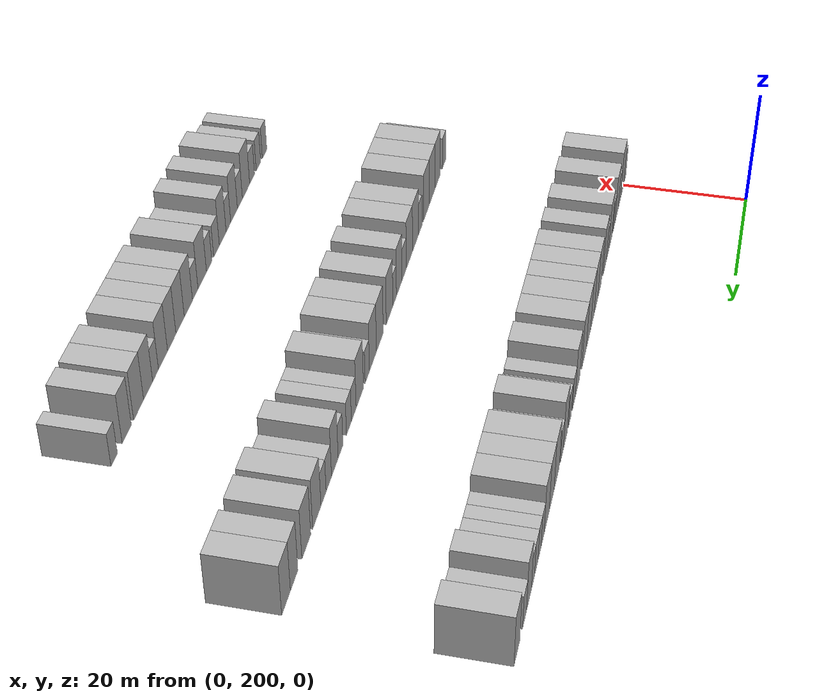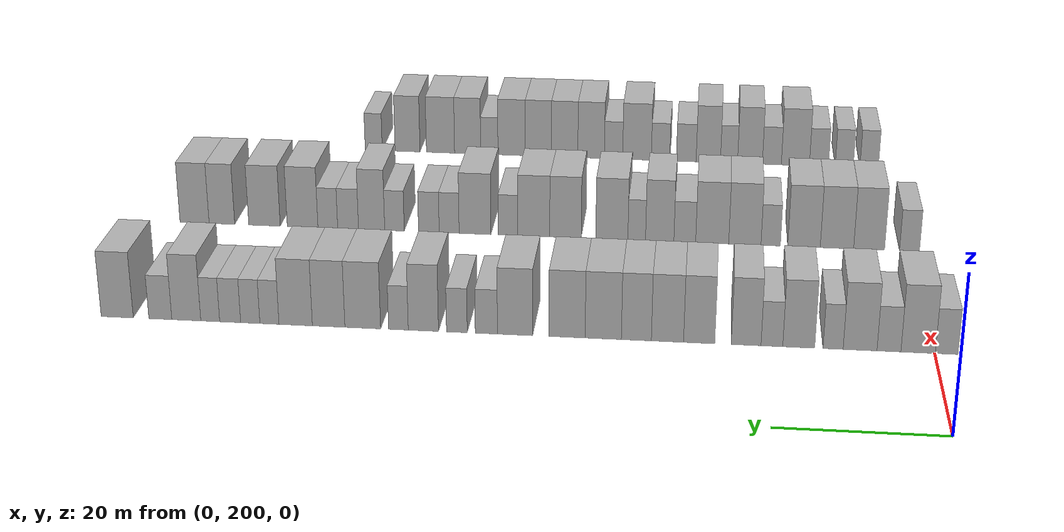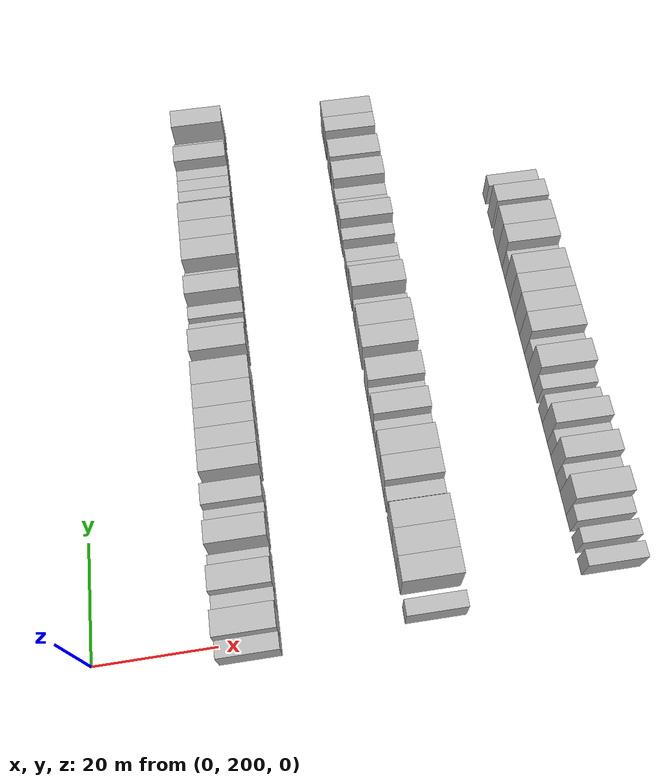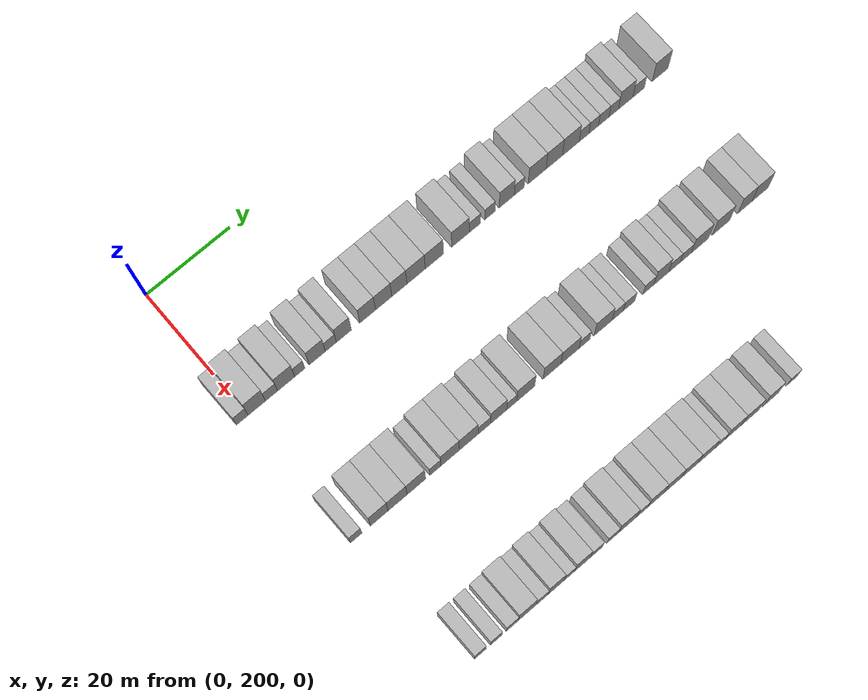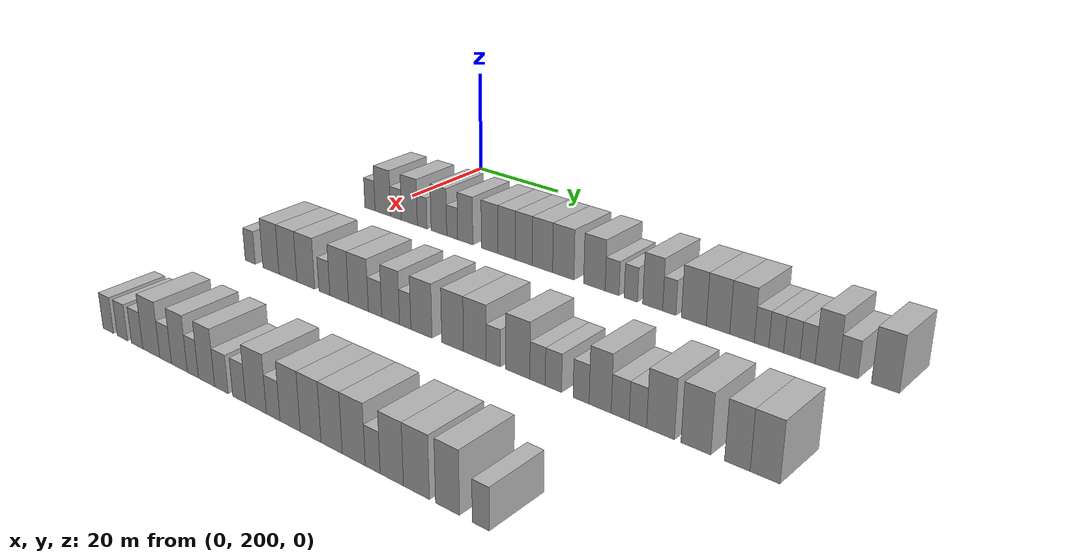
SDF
<sdf version="1.6">
 <world name="default">
  <model name="building_163">
   <static>1</static>
   <pose>25.0000 198.5859 0 0.000000 0.000000 0.000000</pose>
   <link name="link">
    <pose>0 0 3.00 0 0 0</pose>
    <collision name="collision"><geometry><box><size>10.0000 2.7339 6.0000</size></box></geometry></collision>
    <visual name="visual">
     <cast_shadows>0</cast_shadows>
     <geometry><box><size>10.0000 2.7339 6.0000</size></box></geometry>
     <material>
      <script>
       <uri>model://HANNAS_wall/materials/scripts</uri>
       <uri>model://HANNAS_wall/materials/textures</uri>
       <name>vrc/HANNAS_wall</name>
      </script>
     </material>
    </visual>
   </link>
  </model>
  <model name="building_164">
   <static>1</static>
   <pose>25.0000 202.0020 0 0.000000 0.000000 0.000000</pose>
   <link name="link">
    <pose>0 0 4.50 0 0 0</pose>
    <collision name="collision"><geometry><box><size>10.0000 4.0982 9.0000</size></box></geometry></collision>
    <visual name="visual">
     <cast_shadows>0</cast_shadows>
     <geometry><box><size>10.0000 4.0982 9.0000</size></box></geometry>
     <material>
      <script>
       <uri>model://HANNAS_wall/materials/scripts</uri>
       <uri>model://HANNAS_wall/materials/textures</uri>
       <name>vrc/HANNAS_wall</name>
      </script>
     </material>
    </visual>
   </link>
  </model>
  <model name="building_165">
   <static>1</static>
   <pose>25.0000 205.4806 0 0.000000 0.000000 0.000000</pose>
   <link name="link">
    <pose>0 0 3.00 0 0 0</pose>
    <collision name="collision"><geometry><box><size>10.0000 2.8589 6.0000</size></box></geometry></collision>
    <visual name="visual">
     <cast_shadows>0</cast_shadows>
     <geometry><box><size>10.0000 2.8589 6.0000</size></box></geometry>
     <material>
      <script>
       <uri>model://HANNAS_wall/materials/scripts</uri>
       <uri>model://HANNAS_wall/materials/textures</uri>
       <name>vrc/HANNAS_wall</name>
      </script>
     </material>
    </visual>
   </link>
  </model>
  <model name="building_166">
   <static>1</static>
   <pose>25.0000 208.9378 0 0.000000 0.000000 0.000000</pose>
   <link name="link">
    <pose>0 0 4.50 0 0 0</pose>
    <collision name="collision"><geometry><box><size>10.0000 4.0555 9.0000</size></box></geometry></collision>
    <visual name="visual">
     <cast_shadows>0</cast_shadows>
     <geometry><box><size>10.0000 4.0555 9.0000</size></box></geometry>
     <material>
      <script>
       <uri>model://HANNAS_wall/materials/scripts</uri>
       <uri>model://HANNAS_wall/materials/textures</uri>
       <name>vrc/HANNAS_wall</name>
      </script>
     </material>
    </visual>
   </link>
  </model>
  <model name="building_167">
   <static>1</static>
   <pose>25.0000 212.1729 0 0.000000 0.000000 0.000000</pose>
   <link name="link">
    <pose>0 0 3.00 0 0 0</pose>
    <collision name="collision"><geometry><box><size>10.0000 2.4148 6.0000</size></box></geometry></collision>
    <visual name="visual">
     <cast_shadows>0</cast_shadows>
     <geometry><box><size>10.0000 2.4148 6.0000</size></box></geometry>
     <material>
      <script>
       <uri>model://HANNAS_wall/materials/scripts</uri>
       <uri>model://HANNAS_wall/materials/textures</uri>
       <name>vrc/HANNAS_wall</name>
      </script>
     </material>
    </visual>
   </link>
  </model>
  <model name="building_168">
   <static>1</static>
   <pose>25.0000 216.3056 0 0.000000 0.000000 0.000000</pose>
   <link name="link">
    <pose>0 0 4.50 0 0 0</pose>
    <collision name="collision"><geometry><box><size>10.0000 3.8506 9.0000</size></box></geometry></collision>
    <visual name="visual">
     <cast_shadows>0</cast_shadows>
     <geometry><box><size>10.0000 3.8506 9.0000</size></box></geometry>
     <material>
      <script>
       <uri>model://HANNAS_wall/materials/scripts</uri>
       <uri>model://HANNAS_wall/materials/textures</uri>
       <name>vrc/HANNAS_wall</name>
      </script>
     </material>
    </visual>
   </link>
  </model>
  <model name="building_169">
   <static>1</static>
   <pose>25.0000 219.5453 0 0.000000 0.000000 0.000000</pose>
   <link name="link">
    <pose>0 0 3.00 0 0 0</pose>
    <collision name="collision"><geometry><box><size>10.0000 2.6289 6.0000</size></box></geometry></collision>
    <visual name="visual">
     <cast_shadows>0</cast_shadows>
     <geometry><box><size>10.0000 2.6289 6.0000</size></box></geometry>
     <material>
      <script>
       <uri>model://HANNAS_wall/materials/scripts</uri>
       <uri>model://HANNAS_wall/materials/textures</uri>
       <name>vrc/HANNAS_wall</name>
      </script>
     </material>
    </visual>
   </link>
  </model>
  <model name="building_170">
   <static>1</static>
   <pose>25.0000 222.6621 0 0.000000 0.000000 0.000000</pose>
   <link name="link">
    <pose>0 0 4.50 0 0 0</pose>
    <collision name="collision"><geometry><box><size>10.0000 3.6047 9.0000</size></box></geometry></collision>
    <visual name="visual">
     <cast_shadows>0</cast_shadows>
     <geometry><box><size>10.0000 3.6047 9.0000</size></box></geometry>
     <material>
      <script>
       <uri>model://HANNAS_wall/materials/scripts</uri>
       <uri>model://HANNAS_wall/materials/textures</uri>
       <name>vrc/HANNAS_wall</name>
      </script>
     </material>
    </visual>
   </link>
  </model>
  <model name="building_171">
   <static>1</static>
   <pose>25.0000 228.3617 0 0.000000 0.000000 0.000000</pose>
   <link name="link">
    <pose>0 0 4.50 0 0 0</pose>
    <collision name="collision"><geometry><box><size>10.0000 3.7944 9.0000</size></box></geometry></collision>
    <visual name="visual">
     <cast_shadows>0</cast_shadows>
     <geometry><box><size>10.0000 3.7944 9.0000</size></box></geometry>
     <material>
      <script>
       <uri>model://HANNAS_wall/materials/scripts</uri>
       <uri>model://HANNAS_wall/materials/textures</uri>
       <name>vrc/HANNAS_wall</name>
      </script>
     </material>
    </visual>
   </link>
  </model>
  <model name="building_172">
   <static>1</static>
   <pose>25.0000 232.2237 0 0.000000 0.000000 0.000000</pose>
   <link name="link">
    <pose>0 0 4.50 0 0 0</pose>
    <collision name="collision"><geometry><box><size>10.0000 3.9296 9.0000</size></box></geometry></collision>
    <visual name="visual">
     <cast_shadows>0</cast_shadows>
     <geometry><box><size>10.0000 3.9296 9.0000</size></box></geometry>
     <material>
      <script>
       <uri>model://HANNAS_wall/materials/scripts</uri>
       <uri>model://HANNAS_wall/materials/textures</uri>
       <name>vrc/HANNAS_wall</name>
      </script>
     </material>
    </visual>
   </link>
  </model>
  <model name="building_173">
   <static>1</static>
   <pose>25.0000 236.0259 0 0.000000 0.000000 0.000000</pose>
   <link name="link">
    <pose>0 0 4.50 0 0 0</pose>
    <collision name="collision"><geometry><box><size>10.0000 3.6748 9.0000</size></box></geometry></collision>
    <visual name="visual">
     <cast_shadows>0</cast_shadows>
     <geometry><box><size>10.0000 3.6748 9.0000</size></box></geometry>
     <material>
      <script>
       <uri>model://HANNAS_wall/materials/scripts</uri>
       <uri>model://HANNAS_wall/materials/textures</uri>
       <name>vrc/HANNAS_wall</name>
      </script>
     </material>
    </visual>
   </link>
  </model>
  <model name="building_174">
   <static>1</static>
   <pose>25.0000 240.0849 0 0.000000 0.000000 0.000000</pose>
   <link name="link">
    <pose>0 0 4.50 0 0 0</pose>
    <collision name="collision"><geometry><box><size>10.0000 4.4433 9.0000</size></box></geometry></collision>
    <visual name="visual">
     <cast_shadows>0</cast_shadows>
     <geometry><box><size>10.0000 4.4433 9.0000</size></box></geometry>
     <material>
      <script>
       <uri>model://HANNAS_wall/materials/scripts</uri>
       <uri>model://HANNAS_wall/materials/textures</uri>
       <name>vrc/HANNAS_wall</name>
      </script>
     </material>
    </visual>
   </link>
  </model>
  <model name="building_175">
   <static>1</static>
   <pose>25.0000 244.5379 0 0.000000 0.000000 0.000000</pose>
   <link name="link">
    <pose>0 0 4.50 0 0 0</pose>
    <collision name="collision"><geometry><box><size>10.0000 4.4626 9.0000</size></box></geometry></collision>
    <visual name="visual">
     <cast_shadows>0</cast_shadows>
     <geometry><box><size>10.0000 4.4626 9.0000</size></box></geometry>
     <material>
      <script>
       <uri>model://HANNAS_wall/materials/scripts</uri>
       <uri>model://HANNAS_wall/materials/textures</uri>
       <name>vrc/HANNAS_wall</name>
      </script>
     </material>
    </visual>
   </link>
  </model>
  <model name="building_176">
   <static>1</static>
   <pose>25.0000 250.9520 0 0.000000 0.000000 0.000000</pose>
   <link name="link">
    <pose>0 0 4.50 0 0 0</pose>
    <collision name="collision"><geometry><box><size>10.0000 4.3655 9.0000</size></box></geometry></collision>
    <visual name="visual">
     <cast_shadows>0</cast_shadows>
     <geometry><box><size>10.0000 4.3655 9.0000</size></box></geometry>
     <material>
      <script>
       <uri>model://HANNAS_wall/materials/scripts</uri>
       <uri>model://HANNAS_wall/materials/textures</uri>
       <name>vrc/HANNAS_wall</name>
      </script>
     </material>
    </visual>
   </link>
  </model>
  <model name="building_177">
   <static>1</static>
   <pose>25.0000 254.5074 0 0.000000 0.000000 0.000000</pose>
   <link name="link">
    <pose>0 0 3.00 0 0 0</pose>
    <collision name="collision"><geometry><box><size>10.0000 2.7453 6.0000</size></box></geometry></collision>
    <visual name="visual">
     <cast_shadows>0</cast_shadows>
     <geometry><box><size>10.0000 2.7453 6.0000</size></box></geometry>
     <material>
      <script>
       <uri>model://HANNAS_wall/materials/scripts</uri>
       <uri>model://HANNAS_wall/materials/textures</uri>
       <name>vrc/HANNAS_wall</name>
      </script>
     </material>
    </visual>
   </link>
  </model>
  <model name="building_178">
   <static>1</static>
   <pose>25.0000 258.1703 0 0.000000 0.000000 0.000000</pose>
   <link name="link">
    <pose>0 0 3.00 0 0 0</pose>
    <collision name="collision"><geometry><box><size>10.0000 2.5804 6.0000</size></box></geometry></collision>
    <visual name="visual">
     <cast_shadows>0</cast_shadows>
     <geometry><box><size>10.0000 2.5804 6.0000</size></box></geometry>
     <material>
      <script>
       <uri>model://HANNAS_wall/materials/scripts</uri>
       <uri>model://HANNAS_wall/materials/textures</uri>
       <name>vrc/HANNAS_wall</name>
      </script>
     </material>
    </visual>
   </link>
  </model>
  <model name="building_179">
   <static>1</static>
   <pose>25.0000 262.3469 0 0.000000 0.000000 0.000000</pose>
   <link name="link">
    <pose>0 0 4.50 0 0 0</pose>
    <collision name="collision"><geometry><box><size>10.0000 3.7728 9.0000</size></box></geometry></collision>
    <visual name="visual">
     <cast_shadows>0</cast_shadows>
     <geometry><box><size>10.0000 3.7728 9.0000</size></box></geometry>
     <material>
      <script>
       <uri>model://HANNAS_wall/materials/scripts</uri>
       <uri>model://HANNAS_wall/materials/textures</uri>
       <name>vrc/HANNAS_wall</name>
      </script>
     </material>
    </visual>
   </link>
  </model>
  <model name="building_180">
   <static>1</static>
   <pose>25.0000 265.4621 0 0.000000 0.000000 0.000000</pose>
   <link name="link">
    <pose>0 0 3.00 0 0 0</pose>
    <collision name="collision"><geometry><box><size>10.0000 2.4575 6.0000</size></box></geometry></collision>
    <visual name="visual">
     <cast_shadows>0</cast_shadows>
     <geometry><box><size>10.0000 2.4575 6.0000</size></box></geometry>
     <material>
      <script>
       <uri>model://HANNAS_wall/materials/scripts</uri>
       <uri>model://HANNAS_wall/materials/textures</uri>
       <name>vrc/HANNAS_wall</name>
      </script>
     </material>
    </visual>
   </link>
  </model>
  <model name="building_181">
   <static>1</static>
   <pose>25.0000 269.9332 0 0.000000 0.000000 0.000000</pose>
   <link name="link">
    <pose>0 0 4.50 0 0 0</pose>
    <collision name="collision"><geometry><box><size>10.0000 4.4846 9.0000</size></box></geometry></collision>
    <visual name="visual">
     <cast_shadows>0</cast_shadows>
     <geometry><box><size>10.0000 4.4846 9.0000</size></box></geometry>
     <material>
      <script>
       <uri>model://HANNAS_wall/materials/scripts</uri>
       <uri>model://HANNAS_wall/materials/textures</uri>
       <name>vrc/HANNAS_wall</name>
      </script>
     </material>
    </visual>
   </link>
  </model>
  <model name="building_182">
   <static>1</static>
   <pose>25.0000 274.2266 0 0.000000 0.000000 0.000000</pose>
   <link name="link">
    <pose>0 0 4.50 0 0 0</pose>
    <collision name="collision"><geometry><box><size>10.0000 4.1022 9.0000</size></box></geometry></collision>
    <visual name="visual">
     <cast_shadows>0</cast_shadows>
     <geometry><box><size>10.0000 4.1022 9.0000</size></box></geometry>
     <material>
      <script>
       <uri>model://HANNAS_wall/materials/scripts</uri>
       <uri>model://HANNAS_wall/materials/textures</uri>
       <name>vrc/HANNAS_wall</name>
      </script>
     </material>
    </visual>
   </link>
  </model>
  <model name="building_183">
   <static>1</static>
   <pose>25.0000 278.3892 0 0.000000 0.000000 0.000000</pose>
   <link name="link">
    <pose>0 0 4.50 0 0 0</pose>
    <collision name="collision"><geometry><box><size>10.0000 4.2228 9.0000</size></box></geometry></collision>
    <visual name="visual">
     <cast_shadows>0</cast_shadows>
     <geometry><box><size>10.0000 4.2228 9.0000</size></box></geometry>
     <material>
      <script>
       <uri>model://HANNAS_wall/materials/scripts</uri>
       <uri>model://HANNAS_wall/materials/textures</uri>
       <name>vrc/HANNAS_wall</name>
      </script>
     </material>
    </visual>
   </link>
  </model>
  <model name="building_184">
   <static>1</static>
   <pose>25.0000 281.7107 0 0.000000 0.000000 0.000000</pose>
   <link name="link">
    <pose>0 0 3.00 0 0 0</pose>
    <collision name="collision"><geometry><box><size>10.0000 2.4202 6.0000</size></box></geometry></collision>
    <visual name="visual">
     <cast_shadows>0</cast_shadows>
     <geometry><box><size>10.0000 2.4202 6.0000</size></box></geometry>
     <material>
      <script>
       <uri>model://HANNAS_wall/materials/scripts</uri>
       <uri>model://HANNAS_wall/materials/textures</uri>
       <name>vrc/HANNAS_wall</name>
      </script>
     </material>
    </visual>
   </link>
  </model>
  <model name="building_185">
   <static>1</static>
   <pose>25.0000 284.1407 0 0.000000 0.000000 0.000000</pose>
   <link name="link">
    <pose>0 0 3.00 0 0 0</pose>
    <collision name="collision"><geometry><box><size>10.0000 2.4399 6.0000</size></box></geometry></collision>
    <visual name="visual">
     <cast_shadows>0</cast_shadows>
     <geometry><box><size>10.0000 2.4399 6.0000</size></box></geometry>
     <material>
      <script>
       <uri>model://HANNAS_wall/materials/scripts</uri>
       <uri>model://HANNAS_wall/materials/textures</uri>
       <name>vrc/HANNAS_wall</name>
      </script>
     </material>
    </visual>
   </link>
  </model>
  <model name="building_186">
   <static>1</static>
   <pose>25.0000 286.6944 0 0.000000 0.000000 0.000000</pose>
   <link name="link">
    <pose>0 0 3.00 0 0 0</pose>
    <collision name="collision"><geometry><box><size>10.0000 2.6676 6.0000</size></box></geometry></collision>
    <visual name="visual">
     <cast_shadows>0</cast_shadows>
     <geometry><box><size>10.0000 2.6676 6.0000</size></box></geometry>
     <material>
      <script>
       <uri>model://HANNAS_wall/materials/scripts</uri>
       <uri>model://HANNAS_wall/materials/textures</uri>
       <name>vrc/HANNAS_wall</name>
      </script>
     </material>
    </visual>
   </link>
  </model>
  <model name="building_187">
   <static>1</static>
   <pose>25.0000 289.2311 0 0.000000 0.000000 0.000000</pose>
   <link name="link">
    <pose>0 0 3.00 0 0 0</pose>
    <collision name="collision"><geometry><box><size>10.0000 2.4057 6.0000</size></box></geometry></collision>
    <visual name="visual">
     <cast_shadows>0</cast_shadows>
     <geometry><box><size>10.0000 2.4057 6.0000</size></box></geometry>
     <material>
      <script>
       <uri>model://HANNAS_wall/materials/scripts</uri>
       <uri>model://HANNAS_wall/materials/textures</uri>
       <name>vrc/HANNAS_wall</name>
      </script>
     </material>
    </visual>
   </link>
  </model>
  <model name="building_188">
   <static>1</static>
   <pose>25.0000 292.2837 0 0.000000 0.000000 0.000000</pose>
   <link name="link">
    <pose>0 0 4.50 0 0 0</pose>
    <collision name="collision"><geometry><box><size>10.0000 3.6994 9.0000</size></box></geometry></collision>
    <visual name="visual">
     <cast_shadows>0</cast_shadows>
     <geometry><box><size>10.0000 3.6994 9.0000</size></box></geometry>
     <material>
      <script>
       <uri>model://HANNAS_wall/materials/scripts</uri>
       <uri>model://HANNAS_wall/materials/textures</uri>
       <name>vrc/HANNAS_wall</name>
      </script>
     </material>
    </visual>
   </link>
  </model>
  <model name="building_189">
   <static>1</static>
   <pose>25.0000 295.6022 0 0.000000 0.000000 0.000000</pose>
   <link name="link">
    <pose>0 0 3.00 0 0 0</pose>
    <collision name="collision"><geometry><box><size>10.0000 2.9377 6.0000</size></box></geometry></collision>
    <visual name="visual">
     <cast_shadows>0</cast_shadows>
     <geometry><box><size>10.0000 2.9377 6.0000</size></box></geometry>
     <material>
      <script>
       <uri>model://HANNAS_wall/materials/scripts</uri>
       <uri>model://HANNAS_wall/materials/textures</uri>
       <name>vrc/HANNAS_wall</name>
      </script>
     </material>
    </visual>
   </link>
  </model>
  <model name="building_190">
   <static>1</static>
   <pose>25.0000 301.1313 0 0.000000 0.000000 0.000000</pose>
   <link name="link">
    <pose>0 0 4.50 0 0 0</pose>
    <collision name="collision"><geometry><box><size>10.0000 4.1204 9.0000</size></box></geometry></collision>
    <visual name="visual">
     <cast_shadows>0</cast_shadows>
     <geometry><box><size>10.0000 4.1204 9.0000</size></box></geometry>
     <material>
      <script>
       <uri>model://HANNAS_wall/materials/scripts</uri>
       <uri>model://HANNAS_wall/materials/textures</uri>
       <name>vrc/HANNAS_wall</name>
      </script>
     </material>
    </visual>
   </link>
  </model>
  <model name="building_393">
   <static>1</static>
   <pose>55.0000 200.4559 0 0.000000 0.000000 0.000000</pose>
   <link name="link">
    <pose>0 0 3.00 0 0 0</pose>
    <collision name="collision"><geometry><box><size>10.0000 2.6580 6.0000</size></box></geometry></collision>
    <visual name="visual">
     <cast_shadows>0</cast_shadows>
     <geometry><box><size>10.0000 2.6580 6.0000</size></box></geometry>
     <material>
      <script>
       <uri>model://HANNAS_wall/materials/scripts</uri>
       <uri>model://HANNAS_wall/materials/textures</uri>
       <name>vrc/HANNAS_wall</name>
      </script>
     </material>
    </visual>
   </link>
  </model>
  <model name="building_394">
   <static>1</static>
   <pose>55.0000 205.8547 0 0.000000 0.000000 0.000000</pose>
   <link name="link">
    <pose>0 0 4.50 0 0 0</pose>
    <collision name="collision"><geometry><box><size>10.0000 4.1396 9.0000</size></box></geometry></collision>
    <visual name="visual">
     <cast_shadows>0</cast_shadows>
     <geometry><box><size>10.0000 4.1396 9.0000</size></box></geometry>
     <material>
      <script>
       <uri>model://HANNAS_wall/materials/scripts</uri>
       <uri>model://HANNAS_wall/materials/textures</uri>
       <name>vrc/HANNAS_wall</name>
      </script>
     </material>
    </visual>
   </link>
  </model>
  <model name="building_395">
   <static>1</static>
   <pose>55.0000 210.1703 0 0.000000 0.000000 0.000000</pose>
   <link name="link">
    <pose>0 0 4.50 0 0 0</pose>
    <collision name="collision"><geometry><box><size>10.0000 4.4917 9.0000</size></box></geometry></collision>
    <visual name="visual">
     <cast_shadows>0</cast_shadows>
     <geometry><box><size>10.0000 4.4917 9.0000</size></box></geometry>
     <material>
      <script>
       <uri>model://HANNAS_wall/materials/scripts</uri>
       <uri>model://HANNAS_wall/materials/textures</uri>
       <name>vrc/HANNAS_wall</name>
      </script>
     </material>
    </visual>
   </link>
  </model>
  <model name="building_396">
   <static>1</static>
   <pose>55.0000 214.6034 0 0.000000 0.000000 0.000000</pose>
   <link name="link">
    <pose>0 0 4.50 0 0 0</pose>
    <collision name="collision"><geometry><box><size>10.0000 4.3744 9.0000</size></box></geometry></collision>
    <visual name="visual">
     <cast_shadows>0</cast_shadows>
     <geometry><box><size>10.0000 4.3744 9.0000</size></box></geometry>
     <material>
      <script>
       <uri>model://HANNAS_wall/materials/scripts</uri>
       <uri>model://HANNAS_wall/materials/textures</uri>
       <name>vrc/HANNAS_wall</name>
      </script>
     </material>
    </visual>
   </link>
  </model>
  <model name="building_397">
   <static>1</static>
   <pose>55.0000 219.1023 0 0.000000 0.000000 0.000000</pose>
   <link name="link">
    <pose>0 0 3.00 0 0 0</pose>
    <collision name="collision"><geometry><box><size>10.0000 2.6233 6.0000</size></box></geometry></collision>
    <visual name="visual">
     <cast_shadows>0</cast_shadows>
     <geometry><box><size>10.0000 2.6233 6.0000</size></box></geometry>
     <material>
      <script>
       <uri>model://HANNAS_wall/materials/scripts</uri>
       <uri>model://HANNAS_wall/materials/textures</uri>
       <name>vrc/HANNAS_wall</name>
      </script>
     </material>
    </visual>
   </link>
  </model>
  <model name="building_398">
   <static>1</static>
   <pose>55.0000 222.6034 0 0.000000 0.000000 0.000000</pose>
   <link name="link">
    <pose>0 0 4.50 0 0 0</pose>
    <collision name="collision"><geometry><box><size>10.0000 4.3790 9.0000</size></box></geometry></collision>
    <visual name="visual">
     <cast_shadows>0</cast_shadows>
     <geometry><box><size>10.0000 4.3790 9.0000</size></box></geometry>
     <material>
      <script>
       <uri>model://HANNAS_wall/materials/scripts</uri>
       <uri>model://HANNAS_wall/materials/textures</uri>
       <name>vrc/HANNAS_wall</name>
      </script>
     </material>
    </visual>
   </link>
  </model>
  <model name="building_399">
   <static>1</static>
   <pose>55.0000 227.0370 0 0.000000 0.000000 0.000000</pose>
   <link name="link">
    <pose>0 0 4.50 0 0 0</pose>
    <collision name="collision"><geometry><box><size>10.0000 4.4882 9.0000</size></box></geometry></collision>
    <visual name="visual">
     <cast_shadows>0</cast_shadows>
     <geometry><box><size>10.0000 4.4882 9.0000</size></box></geometry>
     <material>
      <script>
       <uri>model://HANNAS_wall/materials/scripts</uri>
       <uri>model://HANNAS_wall/materials/textures</uri>
       <name>vrc/HANNAS_wall</name>
      </script>
     </material>
    </visual>
   </link>
  </model>
  <model name="building_400">
   <static>1</static>
   <pose>55.0000 230.7670 0 0.000000 0.000000 0.000000</pose>
   <link name="link">
    <pose>0 0 3.00 0 0 0</pose>
    <collision name="collision"><geometry><box><size>10.0000 2.9719 6.0000</size></box></geometry></collision>
    <visual name="visual">
     <cast_shadows>0</cast_shadows>
     <geometry><box><size>10.0000 2.9719 6.0000</size></box></geometry>
     <material>
      <script>
       <uri>model://HANNAS_wall/materials/scripts</uri>
       <uri>model://HANNAS_wall/materials/textures</uri>
       <name>vrc/HANNAS_wall</name>
      </script>
     </material>
    </visual>
   </link>
  </model>
  <model name="building_401">
   <static>1</static>
   <pose>55.0000 234.1905 0 0.000000 0.000000 0.000000</pose>
   <link name="link">
    <pose>0 0 4.50 0 0 0</pose>
    <collision name="collision"><geometry><box><size>10.0000 3.8751 9.0000</size></box></geometry></collision>
    <visual name="visual">
     <cast_shadows>0</cast_shadows>
     <geometry><box><size>10.0000 3.8751 9.0000</size></box></geometry>
     <material>
      <script>
       <uri>model://HANNAS_wall/materials/scripts</uri>
       <uri>model://HANNAS_wall/materials/textures</uri>
       <name>vrc/HANNAS_wall</name>
      </script>
     </material>
    </visual>
   </link>
  </model>
  <model name="building_402">
   <static>1</static>
   <pose>55.0000 237.3370 0 0.000000 0.000000 0.000000</pose>
   <link name="link">
    <pose>0 0 3.00 0 0 0</pose>
    <collision name="collision"><geometry><box><size>10.0000 2.4179 6.0000</size></box></geometry></collision>
    <visual name="visual">
     <cast_shadows>0</cast_shadows>
     <geometry><box><size>10.0000 2.4179 6.0000</size></box></geometry>
     <material>
      <script>
       <uri>model://HANNAS_wall/materials/scripts</uri>
       <uri>model://HANNAS_wall/materials/textures</uri>
       <name>vrc/HANNAS_wall</name>
      </script>
     </material>
    </visual>
   </link>
  </model>
  <model name="building_403">
   <static>1</static>
   <pose>55.0000 240.7502 0 0.000000 0.000000 0.000000</pose>
   <link name="link">
    <pose>0 0 4.50 0 0 0</pose>
    <collision name="collision"><geometry><box><size>10.0000 4.4084 9.0000</size></box></geometry></collision>
    <visual name="visual">
     <cast_shadows>0</cast_shadows>
     <geometry><box><size>10.0000 4.4084 9.0000</size></box></geometry>
     <material>
      <script>
       <uri>model://HANNAS_wall/materials/scripts</uri>
       <uri>model://HANNAS_wall/materials/textures</uri>
       <name>vrc/HANNAS_wall</name>
      </script>
     </material>
    </visual>
   </link>
  </model>
  <model name="building_404">
   <static>1</static>
   <pose>55.0000 247.1271 0 0.000000 0.000000 0.000000</pose>
   <link name="link">
    <pose>0 0 4.50 0 0 0</pose>
    <collision name="collision"><geometry><box><size>10.0000 4.3453 9.0000</size></box></geometry></collision>
    <visual name="visual">
     <cast_shadows>0</cast_shadows>
     <geometry><box><size>10.0000 4.3453 9.0000</size></box></geometry>
     <material>
      <script>
       <uri>model://HANNAS_wall/materials/scripts</uri>
       <uri>model://HANNAS_wall/materials/textures</uri>
       <name>vrc/HANNAS_wall</name>
      </script>
     </material>
    </visual>
   </link>
  </model>
  <model name="building_405">
   <static>1</static>
   <pose>55.0000 251.5133 0 0.000000 0.000000 0.000000</pose>
   <link name="link">
    <pose>0 0 4.50 0 0 0</pose>
    <collision name="collision"><geometry><box><size>10.0000 4.4271 9.0000</size></box></geometry></collision>
    <visual name="visual">
     <cast_shadows>0</cast_shadows>
     <geometry><box><size>10.0000 4.4271 9.0000</size></box></geometry>
     <material>
      <script>
       <uri>model://HANNAS_wall/materials/scripts</uri>
       <uri>model://HANNAS_wall/materials/textures</uri>
       <name>vrc/HANNAS_wall</name>
      </script>
     </material>
    </visual>
   </link>
  </model>
  <model name="building_406">
   <static>1</static>
   <pose>55.0000 255.0807 0 0.000000 0.000000 0.000000</pose>
   <link name="link">
    <pose>0 0 3.00 0 0 0</pose>
    <collision name="collision"><geometry><box><size>10.0000 2.7079 6.0000</size></box></geometry></collision>
    <visual name="visual">
     <cast_shadows>0</cast_shadows>
     <geometry><box><size>10.0000 2.7079 6.0000</size></box></geometry>
     <material>
      <script>
       <uri>model://HANNAS_wall/materials/scripts</uri>
       <uri>model://HANNAS_wall/materials/textures</uri>
       <name>vrc/HANNAS_wall</name>
      </script>
     </material>
    </visual>
   </link>
  </model>
  <model name="building_407">
   <static>1</static>
   <pose>55.0000 259.6467 0 0.000000 0.000000 0.000000</pose>
   <link name="link">
    <pose>0 0 4.50 0 0 0</pose>
    <collision name="collision"><geometry><box><size>10.0000 4.4241 9.0000</size></box></geometry></collision>
    <visual name="visual">
     <cast_shadows>0</cast_shadows>
     <geometry><box><size>10.0000 4.4241 9.0000</size></box></geometry>
     <material>
      <script>
       <uri>model://HANNAS_wall/materials/scripts</uri>
       <uri>model://HANNAS_wall/materials/textures</uri>
       <name>vrc/HANNAS_wall</name>
      </script>
     </material>
    </visual>
   </link>
  </model>
  <model name="building_408">
   <static>1</static>
   <pose>55.0000 263.2481 0 0.000000 0.000000 0.000000</pose>
   <link name="link">
    <pose>0 0 3.00 0 0 0</pose>
    <collision name="collision"><geometry><box><size>10.0000 2.7788 6.0000</size></box></geometry></collision>
    <visual name="visual">
     <cast_shadows>0</cast_shadows>
     <geometry><box><size>10.0000 2.7788 6.0000</size></box></geometry>
     <material>
      <script>
       <uri>model://HANNAS_wall/materials/scripts</uri>
       <uri>model://HANNAS_wall/materials/textures</uri>
       <name>vrc/HANNAS_wall</name>
      </script>
     </material>
    </visual>
   </link>
  </model>
  <model name="building_409">
   <static>1</static>
   <pose>55.0000 266.0779 0 0.000000 0.000000 0.000000</pose>
   <link name="link">
    <pose>0 0 3.00 0 0 0</pose>
    <collision name="collision"><geometry><box><size>10.0000 2.8809 6.0000</size></box></geometry></collision>
    <visual name="visual">
     <cast_shadows>0</cast_shadows>
     <geometry><box><size>10.0000 2.8809 6.0000</size></box></geometry>
     <material>
      <script>
       <uri>model://HANNAS_wall/materials/scripts</uri>
       <uri>model://HANNAS_wall/materials/textures</uri>
       <name>vrc/HANNAS_wall</name>
      </script>
     </material>
    </visual>
   </link>
  </model>
  <model name="building_410">
   <static>1</static>
   <pose>55.0000 270.8846 0 0.000000 0.000000 0.000000</pose>
   <link name="link">
    <pose>0 0 3.00 0 0 0</pose>
    <collision name="collision"><geometry><box><size>10.0000 2.7325 6.0000</size></box></geometry></collision>
    <visual name="visual">
     <cast_shadows>0</cast_shadows>
     <geometry><box><size>10.0000 2.7325 6.0000</size></box></geometry>
     <material>
      <script>
       <uri>model://HANNAS_wall/materials/scripts</uri>
       <uri>model://HANNAS_wall/materials/textures</uri>
       <name>vrc/HANNAS_wall</name>
      </script>
     </material>
    </visual>
   </link>
  </model>
  <model name="building_411">
   <static>1</static>
   <pose>55.0000 274.0913 0 0.000000 0.000000 0.000000</pose>
   <link name="link">
    <pose>0 0 4.50 0 0 0</pose>
    <collision name="collision"><geometry><box><size>10.0000 3.6810 9.0000</size></box></geometry></collision>
    <visual name="visual">
     <cast_shadows>0</cast_shadows>
     <geometry><box><size>10.0000 3.6810 9.0000</size></box></geometry>
     <material>
      <script>
       <uri>model://HANNAS_wall/materials/scripts</uri>
       <uri>model://HANNAS_wall/materials/textures</uri>
       <name>vrc/HANNAS_wall</name>
      </script>
     </material>
    </visual>
   </link>
  </model>
  <model name="building_412">
   <static>1</static>
   <pose>55.0000 277.3997 0 0.000000 0.000000 0.000000</pose>
   <link name="link">
    <pose>0 0 3.00 0 0 0</pose>
    <collision name="collision"><geometry><box><size>10.0000 2.9357 6.0000</size></box></geometry></collision>
    <visual name="visual">
     <cast_shadows>0</cast_shadows>
     <geometry><box><size>10.0000 2.9357 6.0000</size></box></geometry>
     <material>
      <script>
       <uri>model://HANNAS_wall/materials/scripts</uri>
       <uri>model://HANNAS_wall/materials/textures</uri>
       <name>vrc/HANNAS_wall</name>
      </script>
     </material>
    </visual>
   </link>
  </model>
  <model name="building_413">
   <static>1</static>
   <pose>55.0000 280.2575 0 0.000000 0.000000 0.000000</pose>
   <link name="link">
    <pose>0 0 3.00 0 0 0</pose>
    <collision name="collision"><geometry><box><size>10.0000 2.7800 6.0000</size></box></geometry></collision>
    <visual name="visual">
     <cast_shadows>0</cast_shadows>
     <geometry><box><size>10.0000 2.7800 6.0000</size></box></geometry>
     <material>
      <script>
       <uri>model://HANNAS_wall/materials/scripts</uri>
       <uri>model://HANNAS_wall/materials/textures</uri>
       <name>vrc/HANNAS_wall</name>
      </script>
     </material>
    </visual>
   </link>
  </model>
  <model name="building_414">
   <static>1</static>
   <pose>55.0000 283.8146 0 0.000000 0.000000 0.000000</pose>
   <link name="link">
    <pose>0 0 4.50 0 0 0</pose>
    <collision name="collision"><geometry><box><size>10.0000 4.3342 9.0000</size></box></geometry></collision>
    <visual name="visual">
     <cast_shadows>0</cast_shadows>
     <geometry><box><size>10.0000 4.3342 9.0000</size></box></geometry>
     <material>
      <script>
       <uri>model://HANNAS_wall/materials/scripts</uri>
       <uri>model://HANNAS_wall/materials/textures</uri>
       <name>vrc/HANNAS_wall</name>
      </script>
     </material>
    </visual>
   </link>
  </model>
  <model name="building_415">
   <static>1</static>
   <pose>55.0000 289.2119 0 0.000000 0.000000 0.000000</pose>
   <link name="link">
    <pose>0 0 4.50 0 0 0</pose>
    <collision name="collision"><geometry><box><size>10.0000 4.4606 9.0000</size></box></geometry></collision>
    <visual name="visual">
     <cast_shadows>0</cast_shadows>
     <geometry><box><size>10.0000 4.4606 9.0000</size></box></geometry>
     <material>
      <script>
       <uri>model://HANNAS_wall/materials/scripts</uri>
       <uri>model://HANNAS_wall/materials/textures</uri>
       <name>vrc/HANNAS_wall</name>
      </script>
     </material>
    </visual>
   </link>
  </model>
  <model name="building_416">
   <static>1</static>
   <pose>55.0000 295.2677 0 0.000000 0.000000 0.000000</pose>
   <link name="link">
    <pose>0 0 4.50 0 0 0</pose>
    <collision name="collision"><geometry><box><size>10.0000 3.6510 9.0000</size></box></geometry></collision>
    <visual name="visual">
     <cast_shadows>0</cast_shadows>
     <geometry><box><size>10.0000 3.6510 9.0000</size></box></geometry>
     <material>
      <script>
       <uri>model://HANNAS_wall/materials/scripts</uri>
       <uri>model://HANNAS_wall/materials/textures</uri>
       <name>vrc/HANNAS_wall</name>
      </script>
     </material>
    </visual>
   </link>
  </model>
  <model name="building_417">
   <static>1</static>
   <pose>55.0000 299.1685 0 0.000000 0.000000 0.000000</pose>
   <link name="link">
    <pose>0 0 4.50 0 0 0</pose>
    <collision name="collision"><geometry><box><size>10.0000 4.1505 9.0000</size></box></geometry></collision>
    <visual name="visual">
     <cast_shadows>0</cast_shadows>
     <geometry><box><size>10.0000 4.1505 9.0000</size></box></geometry>
     <material>
      <script>
       <uri>model://HANNAS_wall/materials/scripts</uri>
       <uri>model://HANNAS_wall/materials/textures</uri>
       <name>vrc/HANNAS_wall</name>
      </script>
     </material>
    </visual>
   </link>
  </model>
  <model name="building_600">
   <static>1</static>
   <pose>85.0000 203.8461 0 0.000000 0.000000 0.000000</pose>
   <link name="link">
    <pose>0 0 3.00 0 0 0</pose>
    <collision name="collision"><geometry><box><size>10.0000 2.7182 6.0000</size></box></geometry></collision>
    <visual name="visual">
     <cast_shadows>0</cast_shadows>
     <geometry><box><size>10.0000 2.7182 6.0000</size></box></geometry>
     <material>
      <script>
       <uri>model://HANNAS_wall/materials/scripts</uri>
       <uri>model://HANNAS_wall/materials/textures</uri>
       <name>vrc/HANNAS_wall</name>
      </script>
     </material>
    </visual>
   </link>
  </model>
  <model name="building_601">
   <static>1</static>
   <pose>85.0000 207.5456 0 0.000000 0.000000 0.000000</pose>
   <link name="link">
    <pose>0 0 3.00 0 0 0</pose>
    <collision name="collision"><geometry><box><size>10.0000 2.6809 6.0000</size></box></geometry></collision>
    <visual name="visual">
     <cast_shadows>0</cast_shadows>
     <geometry><box><size>10.0000 2.6809 6.0000</size></box></geometry>
     <material>
      <script>
       <uri>model://HANNAS_wall/materials/scripts</uri>
       <uri>model://HANNAS_wall/materials/textures</uri>
       <name>vrc/HANNAS_wall</name>
      </script>
     </material>
    </visual>
   </link>
  </model>
  <model name="building_602">
   <static>1</static>
   <pose>85.0000 211.3083 0 0.000000 0.000000 0.000000</pose>
   <link name="link">
    <pose>0 0 3.00 0 0 0</pose>
    <collision name="collision"><geometry><box><size>10.0000 2.8444 6.0000</size></box></geometry></collision>
    <visual name="visual">
     <cast_shadows>0</cast_shadows>
     <geometry><box><size>10.0000 2.8444 6.0000</size></box></geometry>
     <material>
      <script>
       <uri>model://HANNAS_wall/materials/scripts</uri>
       <uri>model://HANNAS_wall/materials/textures</uri>
       <name>vrc/HANNAS_wall</name>
      </script>
     </material>
    </visual>
   </link>
  </model>
  <model name="building_603">
   <static>1</static>
   <pose>85.0000 214.8278 0 0.000000 0.000000 0.000000</pose>
   <link name="link">
    <pose>0 0 4.50 0 0 0</pose>
    <collision name="collision"><geometry><box><size>10.0000 4.1946 9.0000</size></box></geometry></collision>
    <visual name="visual">
     <cast_shadows>0</cast_shadows>
     <geometry><box><size>10.0000 4.1946 9.0000</size></box></geometry>
     <material>
      <script>
       <uri>model://HANNAS_wall/materials/scripts</uri>
       <uri>model://HANNAS_wall/materials/textures</uri>
       <name>vrc/HANNAS_wall</name>
      </script>
     </material>
    </visual>
   </link>
  </model>
  <model name="building_604">
   <static>1</static>
   <pose>85.0000 218.3422 0 0.000000 0.000000 0.000000</pose>
   <link name="link">
    <pose>0 0 3.00 0 0 0</pose>
    <collision name="collision"><geometry><box><size>10.0000 2.8342 6.0000</size></box></geometry></collision>
    <visual name="visual">
     <cast_shadows>0</cast_shadows>
     <geometry><box><size>10.0000 2.8342 6.0000</size></box></geometry>
     <material>
      <script>
       <uri>model://HANNAS_wall/materials/scripts</uri>
       <uri>model://HANNAS_wall/materials/textures</uri>
       <name>vrc/HANNAS_wall</name>
      </script>
     </material>
    </visual>
   </link>
  </model>
  <model name="building_605">
   <static>1</static>
   <pose>85.0000 221.6233 0 0.000000 0.000000 0.000000</pose>
   <link name="link">
    <pose>0 0 4.50 0 0 0</pose>
    <collision name="collision"><geometry><box><size>10.0000 3.7281 9.0000</size></box></geometry></collision>
    <visual name="visual">
     <cast_shadows>0</cast_shadows>
     <geometry><box><size>10.0000 3.7281 9.0000</size></box></geometry>
     <material>
      <script>
       <uri>model://HANNAS_wall/materials/scripts</uri>
       <uri>model://HANNAS_wall/materials/textures</uri>
       <name>vrc/HANNAS_wall</name>
      </script>
     </material>
    </visual>
   </link>
  </model>
  <model name="building_606">
   <static>1</static>
   <pose>85.0000 224.7687 0 0.000000 0.000000 0.000000</pose>
   <link name="link">
    <pose>0 0 3.00 0 0 0</pose>
    <collision name="collision"><geometry><box><size>10.0000 2.5627 6.0000</size></box></geometry></collision>
    <visual name="visual">
     <cast_shadows>0</cast_shadows>
     <geometry><box><size>10.0000 2.5627 6.0000</size></box></geometry>
     <material>
      <script>
       <uri>model://HANNAS_wall/materials/scripts</uri>
       <uri>model://HANNAS_wall/materials/textures</uri>
       <name>vrc/HANNAS_wall</name>
      </script>
     </material>
    </visual>
   </link>
  </model>
  <model name="building_607">
   <static>1</static>
   <pose>85.0000 227.8806 0 0.000000 0.000000 0.000000</pose>
   <link name="link">
    <pose>0 0 4.50 0 0 0</pose>
    <collision name="collision"><geometry><box><size>10.0000 3.6612 9.0000</size></box></geometry></collision>
    <visual name="visual">
     <cast_shadows>0</cast_shadows>
     <geometry><box><size>10.0000 3.6612 9.0000</size></box></geometry>
     <material>
      <script>
       <uri>model://HANNAS_wall/materials/scripts</uri>
       <uri>model://HANNAS_wall/materials/textures</uri>
       <name>vrc/HANNAS_wall</name>
      </script>
     </material>
    </visual>
   </link>
  </model>
  <model name="building_608">
   <static>1</static>
   <pose>85.0000 231.2026 0 0.000000 0.000000 0.000000</pose>
   <link name="link">
    <pose>0 0 3.00 0 0 0</pose>
    <collision name="collision"><geometry><box><size>10.0000 2.9826 6.0000</size></box></geometry></collision>
    <visual name="visual">
     <cast_shadows>0</cast_shadows>
     <geometry><box><size>10.0000 2.9826 6.0000</size></box></geometry>
     <material>
      <script>
       <uri>model://HANNAS_wall/materials/scripts</uri>
       <uri>model://HANNAS_wall/materials/textures</uri>
       <name>vrc/HANNAS_wall</name>
      </script>
     </material>
    </visual>
   </link>
  </model>
  <model name="building_609">
   <static>1</static>
   <pose>85.0000 235.0875 0 0.000000 0.000000 0.000000</pose>
   <link name="link">
    <pose>0 0 3.00 0 0 0</pose>
    <collision name="collision"><geometry><box><size>10.0000 2.7872 6.0000</size></box></geometry></collision>
    <visual name="visual">
     <cast_shadows>0</cast_shadows>
     <geometry><box><size>10.0000 2.7872 6.0000</size></box></geometry>
     <material>
      <script>
       <uri>model://HANNAS_wall/materials/scripts</uri>
       <uri>model://HANNAS_wall/materials/textures</uri>
       <name>vrc/HANNAS_wall</name>
      </script>
     </material>
    </visual>
   </link>
  </model>
  <model name="building_610">
   <static>1</static>
   <pose>85.0000 238.6527 0 0.000000 0.000000 0.000000</pose>
   <link name="link">
    <pose>0 0 4.50 0 0 0</pose>
    <collision name="collision"><geometry><box><size>10.0000 4.3433 9.0000</size></box></geometry></collision>
    <visual name="visual">
     <cast_shadows>0</cast_shadows>
     <geometry><box><size>10.0000 4.3433 9.0000</size></box></geometry>
     <material>
      <script>
       <uri>model://HANNAS_wall/materials/scripts</uri>
       <uri>model://HANNAS_wall/materials/textures</uri>
       <name>vrc/HANNAS_wall</name>
      </script>
     </material>
    </visual>
   </link>
  </model>
  <model name="building_611">
   <static>1</static>
   <pose>85.0000 242.2146 0 0.000000 0.000000 0.000000</pose>
   <link name="link">
    <pose>0 0 3.00 0 0 0</pose>
    <collision name="collision"><geometry><box><size>10.0000 2.7805 6.0000</size></box></geometry></collision>
    <visual name="visual">
     <cast_shadows>0</cast_shadows>
     <geometry><box><size>10.0000 2.7805 6.0000</size></box></geometry>
     <material>
      <script>
       <uri>model://HANNAS_wall/materials/scripts</uri>
       <uri>model://HANNAS_wall/materials/textures</uri>
       <name>vrc/HANNAS_wall</name>
      </script>
     </material>
    </visual>
   </link>
  </model>
  <model name="building_612">
   <static>1</static>
   <pose>85.0000 245.6233 0 0.000000 0.000000 0.000000</pose>
   <link name="link">
    <pose>0 0 4.50 0 0 0</pose>
    <collision name="collision"><geometry><box><size>10.0000 4.0369 9.0000</size></box></geometry></collision>
    <visual name="visual">
     <cast_shadows>0</cast_shadows>
     <geometry><box><size>10.0000 4.0369 9.0000</size></box></geometry>
     <material>
      <script>
       <uri>model://HANNAS_wall/materials/scripts</uri>
       <uri>model://HANNAS_wall/materials/textures</uri>
       <name>vrc/HANNAS_wall</name>
      </script>
     </material>
    </visual>
   </link>
  </model>
  <model name="building_613">
   <static>1</static>
   <pose>85.0000 249.6588 0 0.000000 0.000000 0.000000</pose>
   <link name="link">
    <pose>0 0 4.50 0 0 0</pose>
    <collision name="collision"><geometry><box><size>10.0000 4.0342 9.0000</size></box></geometry></collision>
    <visual name="visual">
     <cast_shadows>0</cast_shadows>
     <geometry><box><size>10.0000 4.0342 9.0000</size></box></geometry>
     <material>
      <script>
       <uri>model://HANNAS_wall/materials/scripts</uri>
       <uri>model://HANNAS_wall/materials/textures</uri>
       <name>vrc/HANNAS_wall</name>
      </script>
     </material>
    </visual>
   </link>
  </model>
  <model name="building_614">
   <static>1</static>
   <pose>85.0000 253.6697 0 0.000000 0.000000 0.000000</pose>
   <link name="link">
    <pose>0 0 4.50 0 0 0</pose>
    <collision name="collision"><geometry><box><size>10.0000 3.9875 9.0000</size></box></geometry></collision>
    <visual name="visual">
     <cast_shadows>0</cast_shadows>
     <geometry><box><size>10.0000 3.9875 9.0000</size></box></geometry>
     <material>
      <script>
       <uri>model://HANNAS_wall/materials/scripts</uri>
       <uri>model://HANNAS_wall/materials/textures</uri>
       <name>vrc/HANNAS_wall</name>
      </script>
     </material>
    </visual>
   </link>
  </model>
  <model name="building_615">
   <static>1</static>
   <pose>85.0000 257.7580 0 0.000000 0.000000 0.000000</pose>
   <link name="link">
    <pose>0 0 4.50 0 0 0</pose>
    <collision name="collision"><geometry><box><size>10.0000 4.1891 9.0000</size></box></geometry></collision>
    <visual name="visual">
     <cast_shadows>0</cast_shadows>
     <geometry><box><size>10.0000 4.1891 9.0000</size></box></geometry>
     <material>
      <script>
       <uri>model://HANNAS_wall/materials/scripts</uri>
       <uri>model://HANNAS_wall/materials/textures</uri>
       <name>vrc/HANNAS_wall</name>
      </script>
     </material>
    </visual>
   </link>
  </model>
  <model name="building_616">
   <static>1</static>
   <pose>85.0000 261.1811 0 0.000000 0.000000 0.000000</pose>
   <link name="link">
    <pose>0 0 3.00 0 0 0</pose>
    <collision name="collision"><geometry><box><size>10.0000 2.6570 6.0000</size></box></geometry></collision>
    <visual name="visual">
     <cast_shadows>0</cast_shadows>
     <geometry><box><size>10.0000 2.6570 6.0000</size></box></geometry>
     <material>
      <script>
       <uri>model://HANNAS_wall/materials/scripts</uri>
       <uri>model://HANNAS_wall/materials/textures</uri>
       <name>vrc/HANNAS_wall</name>
      </script>
     </material>
    </visual>
   </link>
  </model>
  <model name="building_617">
   <static>1</static>
   <pose>85.0000 264.5154 0 0.000000 0.000000 0.000000</pose>
   <link name="link">
    <pose>0 0 4.50 0 0 0</pose>
    <collision name="collision"><geometry><box><size>10.0000 4.0116 9.0000</size></box></geometry></collision>
    <visual name="visual">
     <cast_shadows>0</cast_shadows>
     <geometry><box><size>10.0000 4.0116 9.0000</size></box></geometry>
     <material>
      <script>
       <uri>model://HANNAS_wall/materials/scripts</uri>
       <uri>model://HANNAS_wall/materials/textures</uri>
       <name>vrc/HANNAS_wall</name>
      </script>
     </material>
    </visual>
   </link>
  </model>
  <model name="building_618">
   <static>1</static>
   <pose>85.0000 268.6924 0 0.000000 0.000000 0.000000</pose>
   <link name="link">
    <pose>0 0 4.50 0 0 0</pose>
    <collision name="collision"><geometry><box><size>10.0000 4.3424 9.0000</size></box></geometry></collision>
    <visual name="visual">
     <cast_shadows>0</cast_shadows>
     <geometry><box><size>10.0000 4.3424 9.0000</size></box></geometry>
     <material>
      <script>
       <uri>model://HANNAS_wall/materials/scripts</uri>
       <uri>model://HANNAS_wall/materials/textures</uri>
       <name>vrc/HANNAS_wall</name>
      </script>
     </material>
    </visual>
   </link>
  </model>
  <model name="building_619">
   <static>1</static>
   <pose>85.0000 273.7894 0 0.000000 0.000000 0.000000</pose>
   <link name="link">
    <pose>0 0 4.50 0 0 0</pose>
    <collision name="collision"><geometry><box><size>10.0000 3.8518 9.0000</size></box></geometry></collision>
    <visual name="visual">
     <cast_shadows>0</cast_shadows>
     <geometry><box><size>10.0000 3.8518 9.0000</size></box></geometry>
     <material>
      <script>
       <uri>model://HANNAS_wall/materials/scripts</uri>
       <uri>model://HANNAS_wall/materials/textures</uri>
       <name>vrc/HANNAS_wall</name>
      </script>
     </material>
    </visual>
   </link>
  </model>
  <model name="building_620">
   <static>1</static>
   <pose>85.0000 279.0333 0 0.000000 0.000000 0.000000</pose>
   <link name="link">
    <pose>0 0 3.00 0 0 0</pose>
    <collision name="collision"><geometry><box><size>10.0000 2.6358 6.0000</size></box></geometry></collision>
    <visual name="visual">
     <cast_shadows>0</cast_shadows>
     <geometry><box><size>10.0000 2.6358 6.0000</size></box></geometry>
     <material>
      <script>
       <uri>model://HANNAS_wall/materials/scripts</uri>
       <uri>model://HANNAS_wall/materials/textures</uri>
       <name>vrc/HANNAS_wall</name>
      </script>
     </material>
    </visual>
   </link>
  </model>
 </world>
</sdf>
